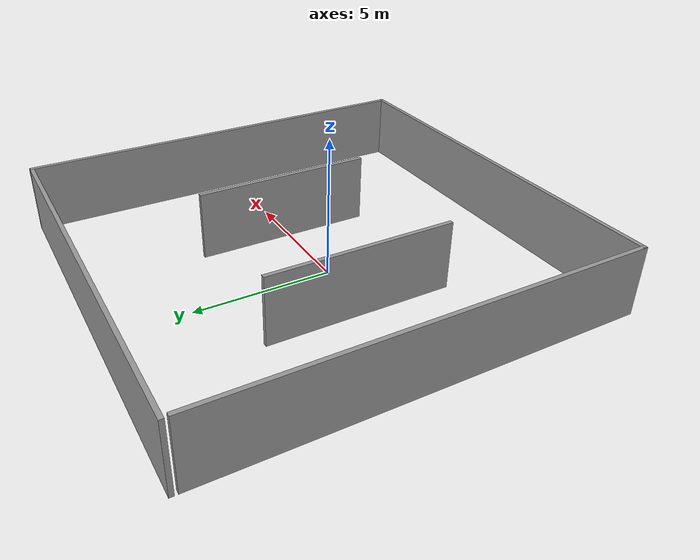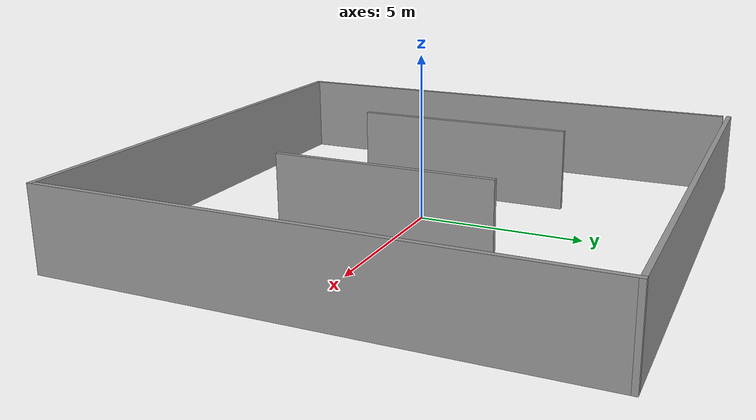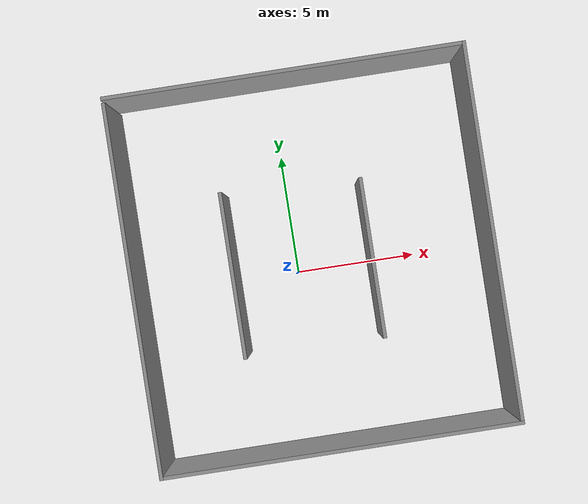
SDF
<?xml version='1.0'?>
<sdf version='1.7'>
  <model name='place'>
    <pose>0.664947 0.394537 0 0 -0 0</pose>
    <link name='Wall_10'>
      <collision name='Wall_10_Collision'>
        <geometry>
          <box>
            <size>6.75 0.15 2.5</size>
          </box>
        </geometry>
        <pose>0 0 1.25 0 -0 0</pose>
      </collision>
      <visual name='Wall_10_Visual'>
        <pose>0 0 1.25 0 -0 0</pose>
        <geometry>
          <box>
            <size>6.75 0.15 2.5</size>
          </box>
        </geometry>
        <material>
          <script>
            <uri>file://media/materials/scripts/gazebo.material</uri>
            <name>Gazebo/Grey</name>
          </script>
          <ambient>1 1 1 1</ambient>
        </material>
        <meta>
          <layer>0</layer>
        </meta>
      </visual>
      <pose>-3.24987 -0.113889 0 0 -0 -1.5708</pose>
    </link>
    <link name='Wall_12'>
      <collision name='Wall_12_Collision'>
        <geometry>
          <box>
            <size>6.5 0.15 2.5</size>
          </box>
        </geometry>
        <pose>0 0 1.25 0 -0 0</pose>
      </collision>
      <visual name='Wall_12_Visual'>
        <pose>0 0 1.25 0 -0 0</pose>
        <geometry>
          <box>
            <size>6.5 0.15 2.5</size>
          </box>
        </geometry>
        <material>
          <script>
            <uri>file://media/materials/scripts/gazebo.material</uri>
            <name>Gazebo/Grey</name>
          </script>
          <ambient>1 1 1 1</ambient>
        </material>
        <meta>
          <layer>0</layer>
        </meta>
      </visual>
      <pose>2.38937 -0.254891 0 0 -0 -1.5708</pose>
    </link>
    <link name='Wall_5'>
      <collision name='Wall_5_Collision'>
        <geometry>
          <box>
            <size>15.25 0.15 2.5</size>
          </box>
        </geometry>
        <pose>0 0 1.25 0 -0 0</pose>
      </collision>
      <visual name='Wall_5_Visual'>
        <pose>0 0 1.25 0 -0 0</pose>
        <geometry>
          <box>
            <size>15.25 0.15 2.5</size>
          </box>
        </geometry>
        <material>
          <script>
            <uri>file://media/materials/scripts/gazebo.material</uri>
            <name>Gazebo/Grey</name>
          </script>
          <ambient>1 1 1 1</ambient>
        </material>
        <meta>
          <layer>0</layer>
        </meta>
      </visual>
      <pose>-7.3 -0.125 0 0 -0 -1.5708</pose>
    </link>
    <link name='Wall_6'>
      <collision name='Wall_6_Collision'>
        <geometry>
          <box>
            <size>14.75 0.15 2.5</size>
          </box>
        </geometry>
        <pose>0 0 1.25 0 -0 0</pose>
      </collision>
      <visual name='Wall_6_Visual'>
        <pose>0 0 1.25 0 -0 0</pose>
        <geometry>
          <box>
            <size>14.75 0.15 2.5</size>
          </box>
        </geometry>
        <material>
          <script>
            <uri>file://media/materials/scripts/gazebo.material</uri>
            <name>Gazebo/Grey</name>
          </script>
          <ambient>1 1 1 1</ambient>
        </material>
        <meta>
          <layer>0</layer>
        </meta>
      </visual>
      <pose>-0 -7.675 0 0 -0 0</pose>
    </link>
    <link name='Wall_7'>
      <collision name='Wall_7_Collision'>
        <geometry>
          <box>
            <size>15.5 0.15 2.5</size>
          </box>
        </geometry>
        <pose>0 0 1.25 0 -0 0</pose>
      </collision>
      <visual name='Wall_7_Visual'>
        <pose>0 0 1.25 0 -0 0</pose>
        <geometry>
          <box>
            <size>15.5 0.15 2.5</size>
          </box>
        </geometry>
        <material>
          <script>
            <uri>file://media/materials/scripts/gazebo.material</uri>
            <name>Gazebo/Grey</name>
          </script>
          <ambient>1 1 1 1</ambient>
        </material>
        <meta>
          <layer>0</layer>
        </meta>
      </visual>
      <pose>7.3 -0 0 0 -0 1.5708</pose>
    </link>
    <link name='Wall_8'>
      <collision name='Wall_8_Collision'>
        <geometry>
          <box>
            <size>14.75 0.15 2.5</size>
          </box>
        </geometry>
        <pose>0 0 1.25 0 -0 0</pose>
      </collision>
      <visual name='Wall_8_Visual'>
        <pose>0 0 1.25 0 -0 0</pose>
        <geometry>
          <box>
            <size>14.75 0.15 2.5</size>
          </box>
        </geometry>
        <material>
          <script>
            <uri>file://media/materials/scripts/gazebo.material</uri>
            <name>Gazebo/Grey</name>
          </script>
          <ambient>1 1 1 1</ambient>
        </material>
        <meta>
          <layer>0</layer>
        </meta>
      </visual>
      <pose>-0 7.675 0 0 -0 3.14159</pose>
    </link>
    <static>1</static>
  </model>
</sdf>
